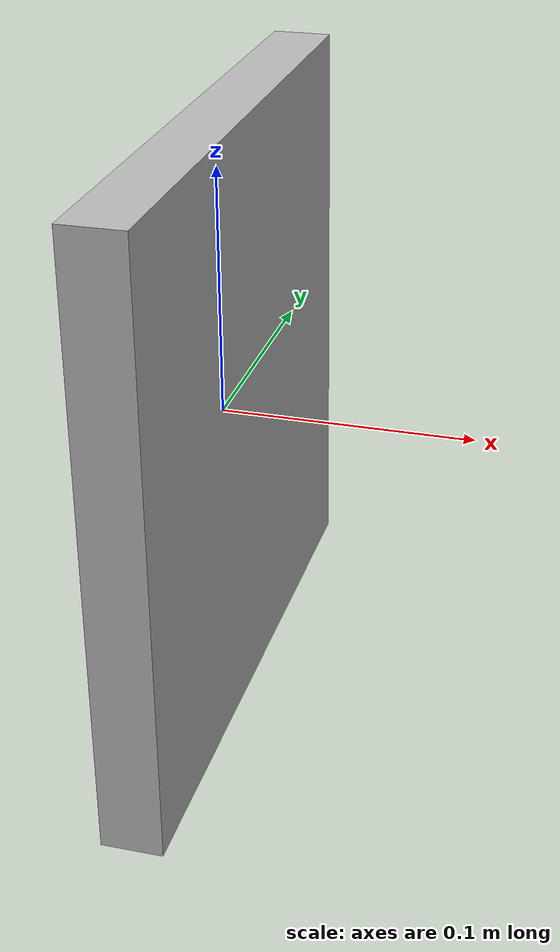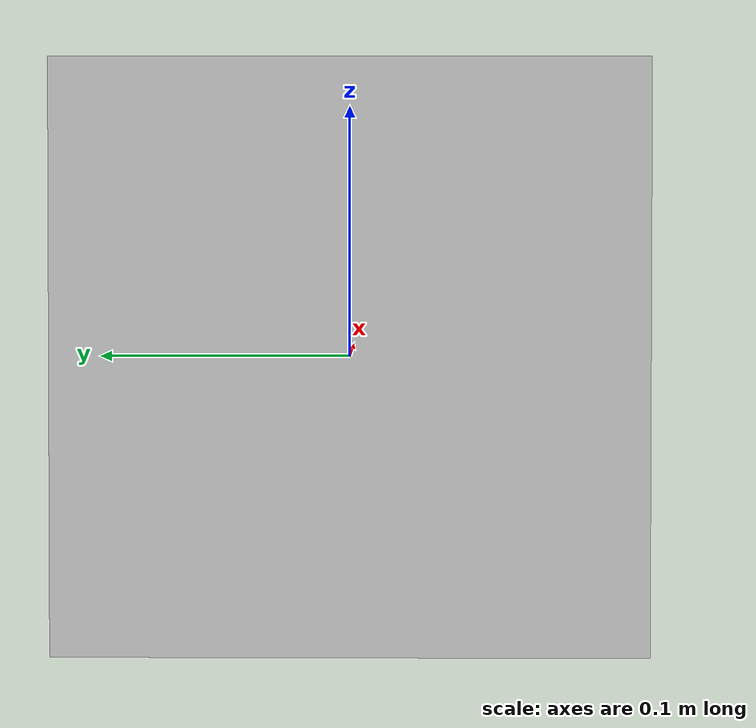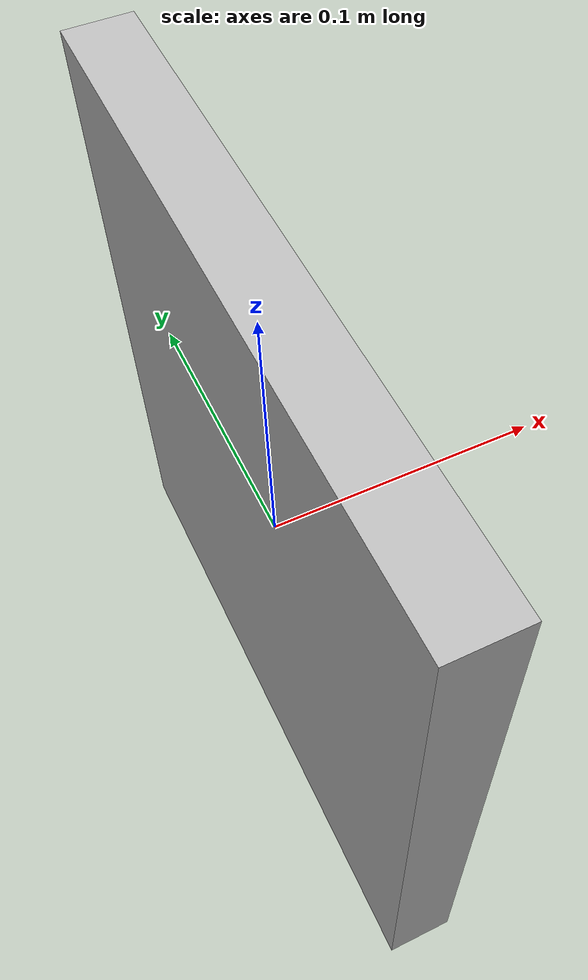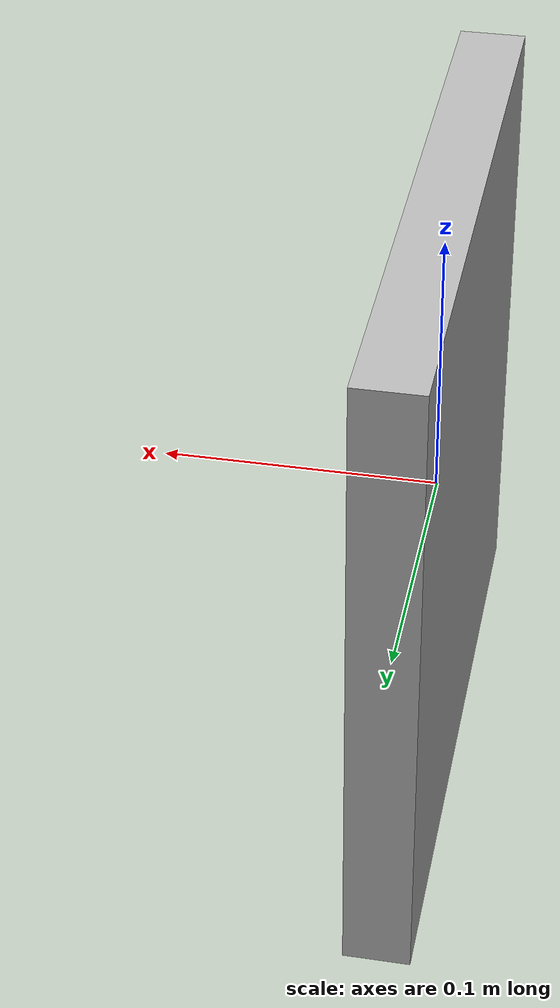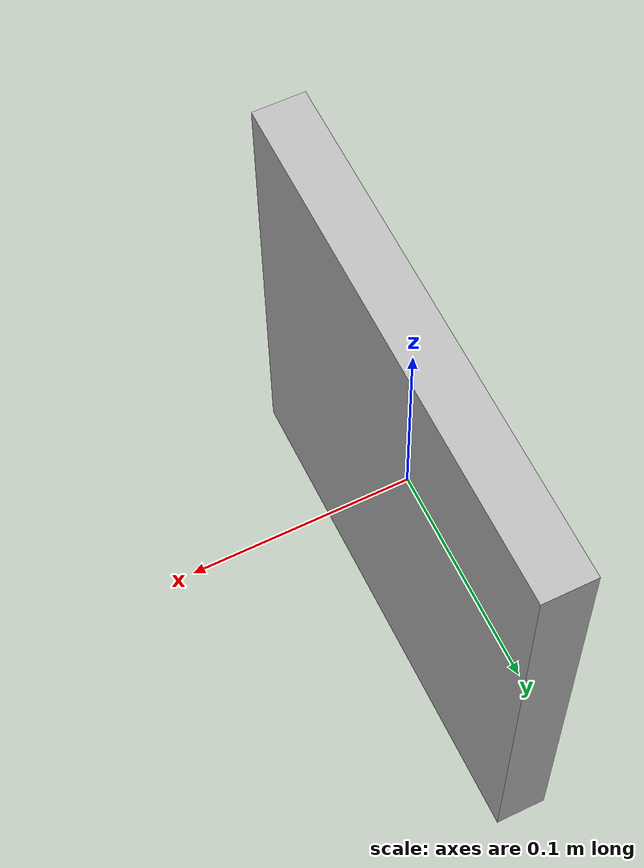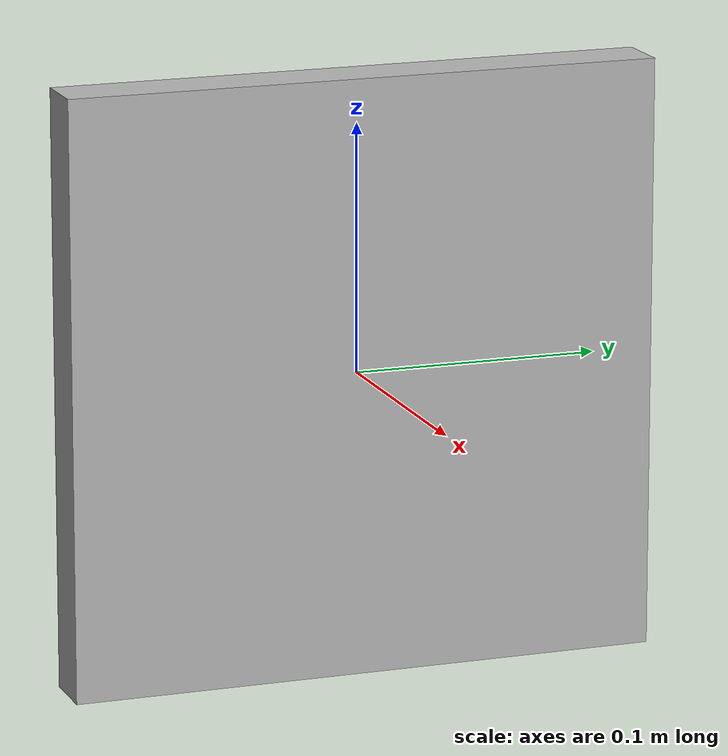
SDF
<?xml version="1.0" ?>
<sdf version="1.5">
  <model name="visual_pattern_small">
    <static>true</static>
    <link name="link">
      <visual name="visual">
        <geometry>
          <mesh>
            <uri>model://visual_pattern/meshes/visual_pattern.dae</uri>
            <scale>0.12 0.12 0.12</scale>
          </mesh>
        </geometry>
      </visual>
    </link>
  </model>
</sdf>
